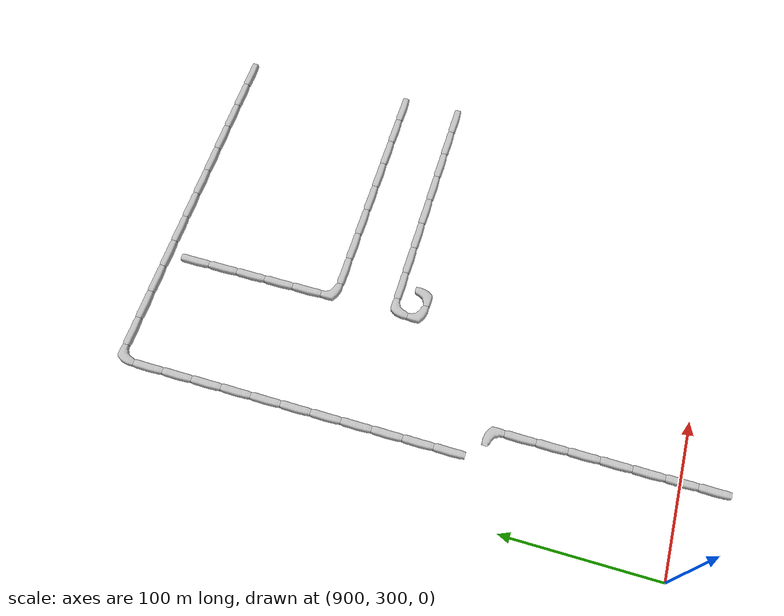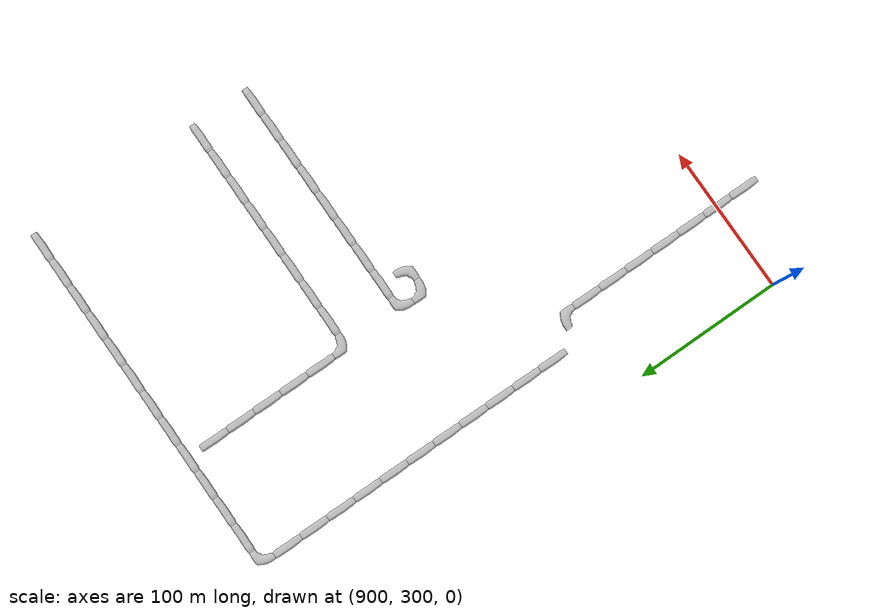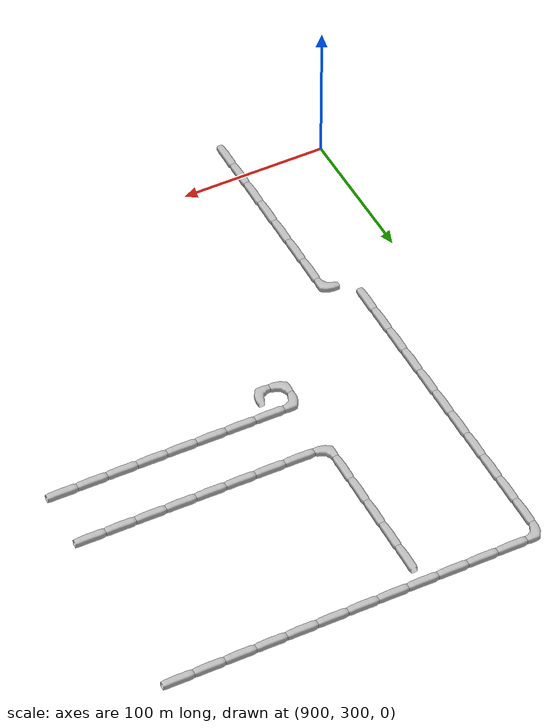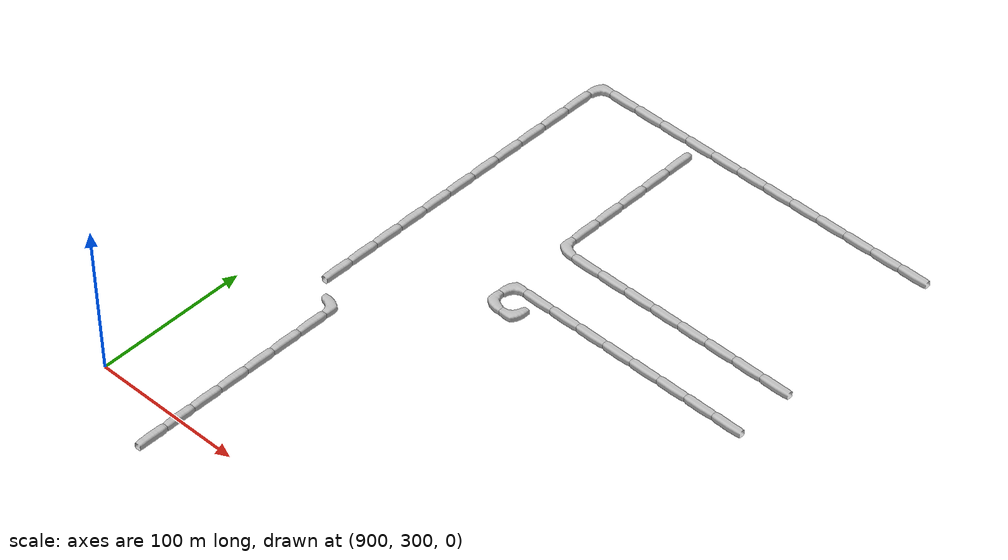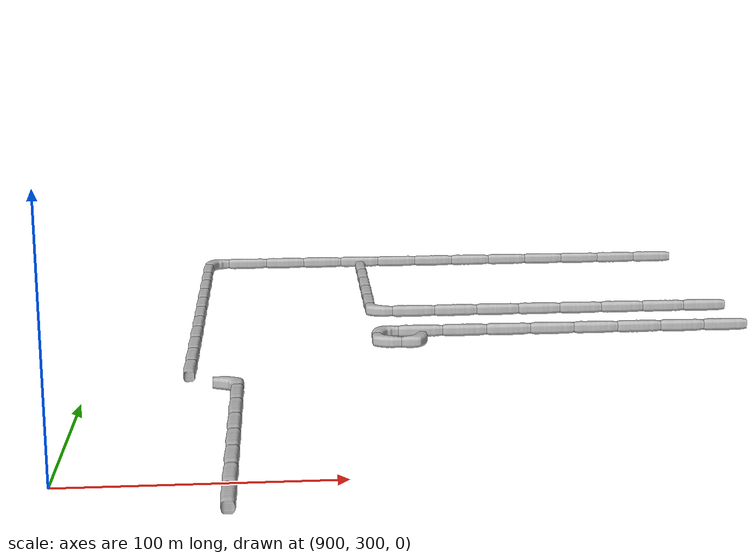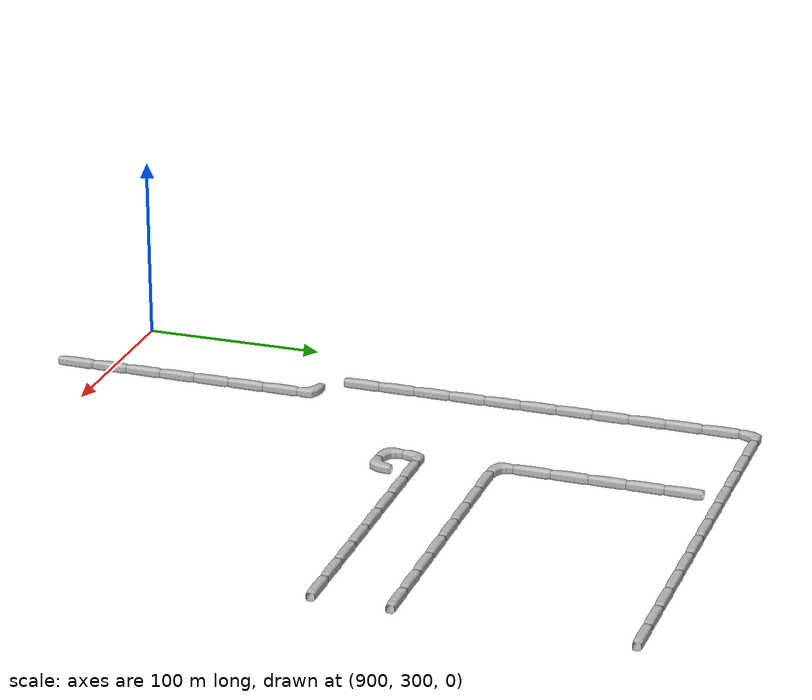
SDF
<sdf version="1.6">
 <world name="cave_32000_2">
  <include>
   <static>true</static>
   <name>cave_59_25</name>
   <pose>1180 500 0 0 0 1.5707963267948966</pose>
   <uri>model://cave_straight_20m</uri>
  </include>
  <include>
   <static>true</static>
   <name>cave_58_25</name>
   <pose>1160 500 0 0 0 1.5707963267948966</pose>
   <uri>model://cave_straight_20m</uri>
  </include>
  <include>
   <static>true</static>
   <name>cave_57_25</name>
   <pose>1140 500 0 0 0 1.5707963267948966</pose>
   <uri>model://cave_straight_20m</uri>
  </include>
  <include>
   <static>true</static>
   <name>cave_56_25</name>
   <pose>1120 500 0 0 0 1.5707963267948966</pose>
   <uri>model://cave_straight_20m</uri>
  </include>
  <include>
   <static>true</static>
   <name>cave_55_25</name>
   <pose>1100 500 0 0 0 1.5707963267948966</pose>
   <uri>model://cave_straight_20m</uri>
  </include>
  <include>
   <static>true</static>
   <name>cave_54_25</name>
   <pose>1080 500 0 0 0 1.5707963267948966</pose>
   <uri>model://cave_straight_20m</uri>
  </include>
  <include>
   <static>true</static>
   <name>cave_53_25</name>
   <pose>1060 500 0 0 0 1.5707963267948966</pose>
   <uri>model://cave_straight_20m</uri>
  </include>
  <include>
   <static>true</static>
   <name>cave_52_25</name>
   <pose>1040 500 0 0 0 1.5707963267948966</pose>
   <uri>model://cave_straight_20m</uri>
  </include>
  <include>
   <static>true</static>
   <name>cave_51_25</name>
   <pose>1020 500 0 0 0 -1.5707963267948966</pose>
   <uri>model://cave_L_20m</uri>
  </include>
  <include>
   <static>true</static>
   <name>cave_51_24</name>
   <pose>1020 480 0 0 0 0.0</pose>
   <uri>model://cave_L_20m</uri>
  </include>
  <include>
   <static>true</static>
   <name>cave_52_24</name>
   <pose>1040 480 0 0 0 1.5707963267948966</pose>
   <uri>model://cave_L_20m</uri>
  </include>
  <include>
   <static>true</static>
   <name>cave_59_27</name>
   <pose>1180 540 0 0 0 1.5707963267948966</pose>
   <uri>model://cave_straight_20m</uri>
  </include>
  <include>
   <static>true</static>
   <name>cave_58_27</name>
   <pose>1160 540 0 0 0 1.5707963267948966</pose>
   <uri>model://cave_straight_20m</uri>
  </include>
  <include>
   <static>true</static>
   <name>cave_57_27</name>
   <pose>1140 540 0 0 0 1.5707963267948966</pose>
   <uri>model://cave_straight_20m</uri>
  </include>
  <include>
   <static>true</static>
   <name>cave_56_27</name>
   <pose>1120 540 0 0 0 1.5707963267948966</pose>
   <uri>model://cave_straight_20m</uri>
  </include>
  <include>
   <static>true</static>
   <name>cave_55_27</name>
   <pose>1100 540 0 0 0 1.5707963267948966</pose>
   <uri>model://cave_straight_20m</uri>
  </include>
  <include>
   <static>true</static>
   <name>cave_54_27</name>
   <pose>1080 540 0 0 0 1.5707963267948966</pose>
   <uri>model://cave_straight_20m</uri>
  </include>
  <include>
   <static>true</static>
   <name>cave_53_27</name>
   <pose>1060 540 0 0 0 1.5707963267948966</pose>
   <uri>model://cave_straight_20m</uri>
  </include>
  <include>
   <static>true</static>
   <name>cave_52_27</name>
   <pose>1040 540 0 0 0 1.5707963267948966</pose>
   <uri>model://cave_straight_20m</uri>
  </include>
  <include>
   <static>true</static>
   <name>cave_51_27</name>
   <pose>1020 540 0 0 0 0.0</pose>
   <uri>model://cave_L_20m</uri>
  </include>
  <include>
   <static>true</static>
   <name>cave_51_28</name>
   <pose>1020 560 0 0 0 0.0</pose>
   <uri>model://cave_straight_20m</uri>
  </include>
  <include>
   <static>true</static>
   <name>cave_51_29</name>
   <pose>1020 580 0 0 0 0.0</pose>
   <uri>model://cave_straight_20m</uri>
  </include>
  <include>
   <static>true</static>
   <name>cave_51_30</name>
   <pose>1020 600 0 0 0 0.0</pose>
   <uri>model://cave_straight_20m</uri>
  </include>
  <include>
   <static>true</static>
   <name>cave_51_31</name>
   <pose>1020 620 0 0 0 0.0</pose>
   <uri>model://cave_straight_20m</uri>
  </include>
  <include>
   <static>true</static>
   <name>cave_51_32</name>
   <pose>1020 640 0 0 0 0.0</pose>
   <uri>model://cave_straight_20m</uri>
  </include>
  <include>
   <static>true</static>
   <name>cave_48_14</name>
   <pose>960 280 0 0 0 0.0</pose>
   <uri>model://cave_straight_20m</uri>
  </include>
  <include>
   <static>true</static>
   <name>cave_48_15</name>
   <pose>960 300 0 0 0 0.0</pose>
   <uri>model://cave_straight_20m</uri>
  </include>
  <include>
   <static>true</static>
   <name>cave_48_16</name>
   <pose>960 320 0 0 0 0.0</pose>
   <uri>model://cave_straight_20m</uri>
  </include>
  <include>
   <static>true</static>
   <name>cave_48_17</name>
   <pose>960 340 0 0 0 0.0</pose>
   <uri>model://cave_straight_20m</uri>
  </include>
  <include>
   <static>true</static>
   <name>cave_48_18</name>
   <pose>960 360 0 0 0 0.0</pose>
   <uri>model://cave_straight_20m</uri>
  </include>
  <include>
   <static>true</static>
   <name>cave_48_19</name>
   <pose>960 380 0 0 0 0.0</pose>
   <uri>model://cave_straight_20m</uri>
  </include>
  <include>
   <static>true</static>
   <name>cave_48_20</name>
   <pose>960 400 0 0 0 0.0</pose>
   <uri>model://cave_straight_20m</uri>
  </include>
  <include>
   <static>true</static>
   <name>cave_48_21</name>
   <pose>960 420 0 0 0 3.141592653589793</pose>
   <uri>model://cave_L_20m</uri>
  </include>
  <include>
   <static>true</static>
   <name>cave_47_22</name>
   <pose>940 440 0 0 0 0.0</pose>
   <uri>model://cave_straight_20m</uri>
  </include>
  <include>
   <static>true</static>
   <name>cave_47_23</name>
   <pose>940 460 0 0 0 0.0</pose>
   <uri>model://cave_straight_20m</uri>
  </include>
  <include>
   <static>true</static>
   <name>cave_47_24</name>
   <pose>940 480 0 0 0 0.0</pose>
   <uri>model://cave_straight_20m</uri>
  </include>
  <include>
   <static>true</static>
   <name>cave_47_25</name>
   <pose>940 500 0 0 0 0.0</pose>
   <uri>model://cave_straight_20m</uri>
  </include>
  <include>
   <static>true</static>
   <name>cave_47_26</name>
   <pose>940 520 0 0 0 0.0</pose>
   <uri>model://cave_straight_20m</uri>
  </include>
  <include>
   <static>true</static>
   <name>cave_47_27</name>
   <pose>940 540 0 0 0 0.0</pose>
   <uri>model://cave_straight_20m</uri>
  </include>
  <include>
   <static>true</static>
   <name>cave_47_28</name>
   <pose>940 560 0 0 0 0.0</pose>
   <uri>model://cave_straight_20m</uri>
  </include>
  <include>
   <static>true</static>
   <name>cave_47_29</name>
   <pose>940 580 0 0 0 0.0</pose>
   <uri>model://cave_straight_20m</uri>
  </include>
  <include>
   <static>true</static>
   <name>cave_47_30</name>
   <pose>940 600 0 0 0 0.0</pose>
   <uri>model://cave_straight_20m</uri>
  </include>
  <include>
   <static>true</static>
   <name>cave_47_31</name>
   <pose>940 620 0 0 0 0.0</pose>
   <uri>model://cave_straight_20m</uri>
  </include>
  <include>
   <static>true</static>
   <name>cave_47_32</name>
   <pose>940 640 0 0 0 0.0</pose>
   <uri>model://cave_straight_20m</uri>
  </include>
  <include>
   <static>true</static>
   <name>cave_47_33</name>
   <pose>940 660 0 0 0 -1.5707963267948966</pose>
   <uri>model://cave_L_20m</uri>
  </include>
  <include>
   <static>true</static>
   <name>cave_48_33</name>
   <pose>960 660 0 0 0 1.5707963267948966</pose>
   <uri>model://cave_straight_20m</uri>
  </include>
  <include>
   <static>true</static>
   <name>cave_49_33</name>
   <pose>980 660 0 0 0 1.5707963267948966</pose>
   <uri>model://cave_straight_20m</uri>
  </include>
  <include>
   <static>true</static>
   <name>cave_50_33</name>
   <pose>1000 660 0 0 0 1.5707963267948966</pose>
   <uri>model://cave_straight_20m</uri>
  </include>
  <include>
   <static>true</static>
   <name>cave_51_33</name>
   <pose>1020 660 0 0 0 1.5707963267948966</pose>
   <uri>model://cave_straight_20m</uri>
  </include>
  <include>
   <static>true</static>
   <name>cave_52_33</name>
   <pose>1040 660 0 0 0 1.5707963267948966</pose>
   <uri>model://cave_straight_20m</uri>
  </include>
  <include>
   <static>true</static>
   <name>cave_53_33</name>
   <pose>1060 660 0 0 0 1.5707963267948966</pose>
   <uri>model://cave_straight_20m</uri>
  </include>
  <include>
   <static>true</static>
   <name>cave_54_33</name>
   <pose>1080 660 0 0 0 1.5707963267948966</pose>
   <uri>model://cave_straight_20m</uri>
  </include>
  <include>
   <static>true</static>
   <name>cave_55_33</name>
   <pose>1100 660 0 0 0 1.5707963267948966</pose>
   <uri>model://cave_straight_20m</uri>
  </include>
  <include>
   <static>true</static>
   <name>cave_56_33</name>
   <pose>1120 660 0 0 0 1.5707963267948966</pose>
   <uri>model://cave_straight_20m</uri>
  </include>
  <include>
   <static>true</static>
   <name>cave_57_33</name>
   <pose>1140 660 0 0 0 1.5707963267948966</pose>
   <uri>model://cave_straight_20m</uri>
  </include>
  <include>
   <static>true</static>
   <name>cave_58_33</name>
   <pose>1160 660 0 0 0 1.5707963267948966</pose>
   <uri>model://cave_straight_20m</uri>
  </include>
  <include>
   <static>true</static>
   <name>cave_59_33</name>
   <pose>1180 660 0 0 0 1.5707963267948966</pose>
   <uri>model://cave_straight_20m</uri>
  </include>
 </world>
</sdf>
